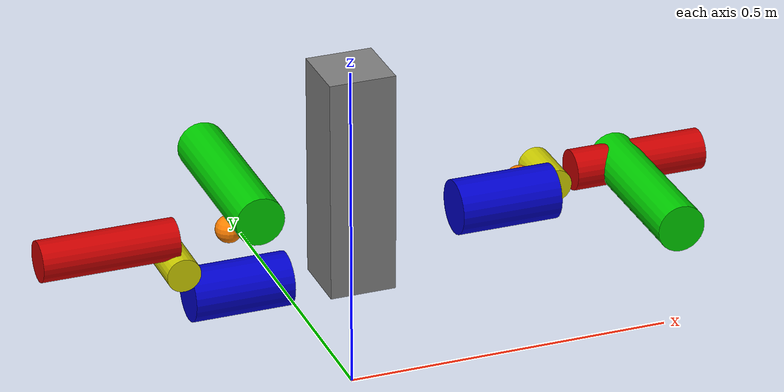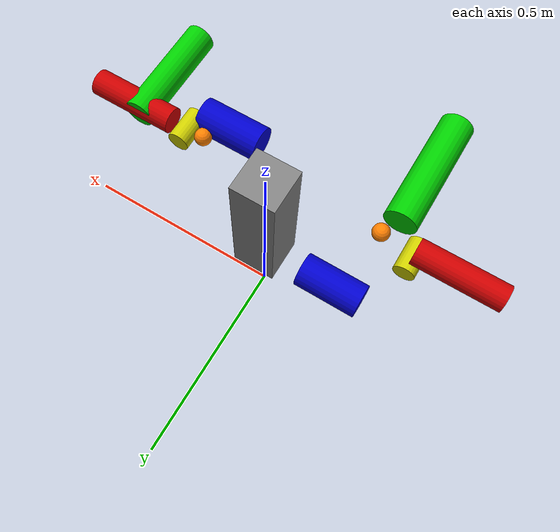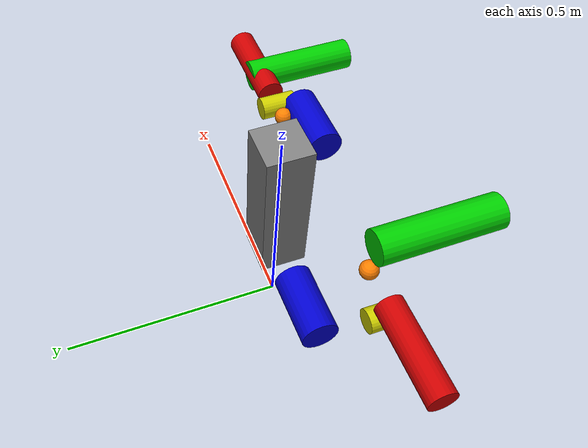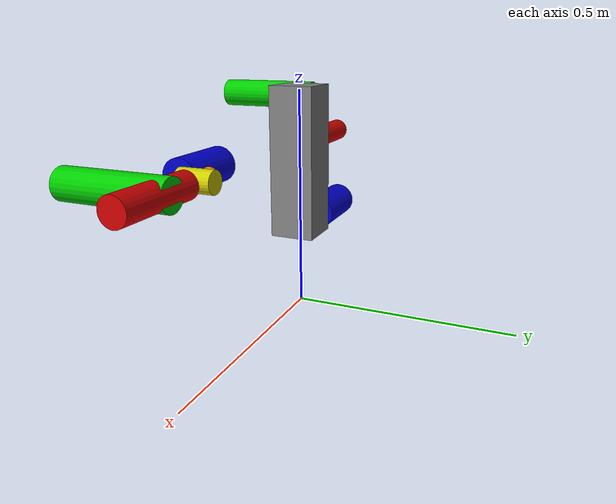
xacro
<?xml version="1.0"?>
<robot xmlns:xacro="http://www.ros.org/wiki/xacro" name="smilei_dual_arm">

  <!-- Load parameters from YAML file -->
  <!-- The actual values will be passed from the launch file as arguments -->

  <!-- Define constants -->
  <xacro:property name="PI" value="3.14159265359"/>
  <xacro:property name="PI_2" value="${PI/2}"/>
  <xacro:property name="PI_4" value="${PI/4}"/>

  <!-- Declare arguments with default values -->
  <!-- Neck dimensions -->
  <xacro:arg name="neck_height" default="0.34"/>
  <xacro:property name="neck_height" value="$(arg neck_height)"/>

  <!-- Arm dimensions -->
  <xacro:arg name="base_height" default="0.34"/>
  <xacro:property name="base_height" value="$(arg base_height)"/>

  <xacro:arg name="link0_length" default="0.10"/>
  <xacro:property name="link0_length" value="$(arg link0_length)"/>

  <xacro:arg name="link0_width" default="0.0"/>
  <xacro:property name="link0_width" value="$(arg link0_width)"/>

  <xacro:arg name="link1_length" default="0.15"/>
  <xacro:property name="link1_length" value="$(arg link1_length)"/>

  <xacro:arg name="link1_width" default="-0.30"/>
  <xacro:property name="link1_width" value="$(arg link1_width)"/>

  <xacro:arg name="link2_length" default="0.25"/>
  <xacro:property name="link2_length" value="$(arg link2_length)"/>

  <xacro:arg name="link2_width" default="0.20"/>
  <xacro:property name="link2_width" value="$(arg link2_width)"/>

  <xacro:arg name="link3_length" default="-0.2"/>
  <xacro:property name="link3_length" value="$(arg link3_length)"/>

  <xacro:arg name="link4_length" default="-0.08"/>
  <xacro:property name="link4_length" value="$(arg link4_length)"/>

  <xacro:arg name="ee_offset" default="0.0"/>
  <xacro:property name="ee_offset" value="$(arg ee_offset)"/>

  <!-- Joint limits - Right Arm -->
  <xacro:arg name="right_joint0_lower" default="-0.78539816339"/>
  <xacro:property name="right_joint0_lower" value="$(arg right_joint0_lower)"/>

  <xacro:arg name="right_joint0_upper" default="1.57079632679"/>
  <xacro:property name="right_joint0_upper" value="$(arg right_joint0_upper)"/>

  <xacro:arg name="right_joint1_lower" default="-0.78539816339"/>
  <xacro:property name="right_joint1_lower" value="$(arg right_joint1_lower)"/>

  <xacro:arg name="right_joint1_upper" default="1.57079632679"/>
  <xacro:property name="right_joint1_upper" value="$(arg right_joint1_upper)"/>

  <xacro:arg name="right_joint2_lower" default="-2.35619449019"/>
  <xacro:property name="right_joint2_lower" value="$(arg right_joint2_lower)"/>

  <xacro:arg name="right_joint2_upper" default="0.78539816339"/>
  <xacro:property name="right_joint2_upper" value="$(arg right_joint2_upper)"/>

  <xacro:arg name="right_joint3_lower" default="-1.57079632679"/>
  <xacro:property name="right_joint3_lower" value="$(arg right_joint3_lower)"/>

  <xacro:arg name="right_joint3_upper" default="0"/>
  <xacro:property name="right_joint3_upper" value="$(arg right_joint3_upper)"/>

  <!-- Joint limits - Left Arm -->
  <xacro:arg name="left_joint0_lower" default="-0.78539816339"/>
  <xacro:property name="left_joint0_lower" value="$(arg left_joint0_lower)"/>

  <xacro:arg name="left_joint0_upper" default="1.57079632679"/>
  <xacro:property name="left_joint0_upper" value="$(arg left_joint0_upper)"/>

  <xacro:arg name="left_joint1_lower" default="-0.78539816339"/>
  <xacro:property name="left_joint1_lower" value="$(arg left_joint1_lower)"/>

  <xacro:arg name="left_joint1_upper" default="1.57079632679"/>
  <xacro:property name="left_joint1_upper" value="$(arg left_joint1_upper)"/>

  <xacro:arg name="left_joint2_lower" default="-2.35619449019"/>
  <xacro:property name="left_joint2_lower" value="$(arg left_joint2_lower)"/>

  <xacro:arg name="left_joint2_upper" default="0.78539816339"/>
  <xacro:property name="left_joint2_upper" value="$(arg left_joint2_upper)"/>

  <xacro:arg name="left_joint3_lower" default="-1.57079632679"/>
  <xacro:property name="left_joint3_lower" value="$(arg left_joint3_lower)"/>

  <xacro:arg name="left_joint3_upper" default="0"/>
  <xacro:property name="left_joint3_upper" value="$(arg left_joint3_upper)"/>

  <!-- Joint dynamics -->
  <xacro:arg name="joint0_effort" default="100.0"/>
  <xacro:property name="joint0_effort" value="$(arg joint0_effort)"/>

  <xacro:arg name="joint0_velocity" default="1.0"/>
  <xacro:property name="joint0_velocity" value="$(arg joint0_velocity)"/>

  <xacro:arg name="joint1_effort" default="100.0"/>
  <xacro:property name="joint1_effort" value="$(arg joint1_effort)"/>

  <xacro:arg name="joint1_velocity" default="1.0"/>
  <xacro:property name="joint1_velocity" value="$(arg joint1_velocity)"/>

  <xacro:arg name="joint2_effort" default="80.0"/>
  <xacro:property name="joint2_effort" value="$(arg joint2_effort)"/>

  <xacro:arg name="joint2_velocity" default="1.0"/>
  <xacro:property name="joint2_velocity" value="$(arg joint2_velocity)"/>

  <xacro:arg name="joint3_effort" default="50.0"/>
  <xacro:property name="joint3_effort" value="$(arg joint3_effort)"/>

  <xacro:arg name="joint3_velocity" default="2.0"/>
  <xacro:property name="joint3_velocity" value="$(arg joint3_velocity)"/>

  <!-- Base Link -->
  <link name="base_link" />

  <!-- Neck Base Joint - Fixed -->
  <joint name="neck_base_joint" type="fixed">
    <parent link="base_link"/>
    <child link="neck_base"/>
    <origin xyz="0 0 ${neck_height}" rpy="0 0 0"/>
  </joint>

  <!-- Base Link (Neck Base) - Fixed reference frame -->
  <link name="neck_base">
    <visual>
      <geometry>
        <box size="0.1 0.1 ${base_height}"/>
      </geometry>
      <origin xyz="0 0 0" rpy="0 0 0"/>
      <material name="gray">
        <color rgba="0.5 0.5 0.5 1.0"/>
      </material>
    </visual>
    <inertial>
      <mass value="0.5"/>
      <inertia ixx="0.001" ixy="0.0" ixz="0.0" iyy="0.001" iyz="0.0" izz="0.001"/>
    </inertial>
  </link>

  <!-- RIGHT ARM (positive X direction) -->

  <!-- Joint 0 Right - Shoulder Pan -->
  <joint name="right_joint_0" type="revolute">
    <parent link="neck_base"/>
    <child link="right_link_1"/>
    <origin xyz="${link0_length} 0 0" rpy="${PI_2} 0 ${PI_2}"/>
    <axis xyz="0 0 1"/>
    <limit lower="${right_joint0_lower}" upper="${right_joint0_upper}" effort="${joint0_effort}" velocity="${joint0_velocity}"/>
  </joint>

  <link name="right_link_1">
    <visual>
      <geometry>
        <cylinder radius="0.04" length="${link1_length}"/>
      </geometry>
      <origin xyz="${link1_width/2} 0 ${link1_length/2}" rpy="0 0 0"/>
      <material name="blue">
        <color rgba="0.0 0.0 0.8 1.0"/>
      </material>
    </visual>
    <inertial>
      <mass value="0.3"/>
      <origin xyz="${link1_width/2} 0 ${link1_length/2}" rpy="0 0 0"/>
      <inertia ixx="0.001" ixy="0.0" ixz="0.0" iyy="0.001" iyz="0.0" izz="0.0005"/>
    </inertial>
  </link>

  <!-- Joint 1 Right - Shoulder Lift -->
  <joint name="right_joint_1" type="revolute">
    <parent link="right_link_1"/>
    <child link="right_link_2"/>
    <origin xyz="${link1_width} 0 ${link1_length}" rpy="${PI_2} 0 ${PI_2}"/>
    <axis xyz="0 0 1"/>
    <limit lower="${right_joint1_lower}" upper="${right_joint1_upper}" effort="${joint1_effort}" velocity="${joint1_velocity}"/>
  </joint>

  <link name="right_link_2">
    <visual>
      <geometry>
        <cylinder radius="0.035" length="${link2_length}"/>
      </geometry>
      <origin xyz="0 ${link2_length/2} ${link2_width/2}" rpy="0 0 0"/>
      <material name="green">
        <color rgba="0.0 0.8 0.0 1.0"/>
      </material>
    </visual>
    <inertial>
      <mass value="0.25"/>
      <origin xyz="0 ${link2_length/2} ${link2_width/2}" rpy="0 0 0"/>
      <inertia ixx="0.0008" ixy="0.0" ixz="0.0" iyy="0.0008" iyz="0.0" izz="0.0004"/>
    </inertial>
  </link>

  <!-- Joint 2 Right - Elbow -->
  <joint name="right_joint_2" type="revolute">
    <parent link="right_link_2"/>
    <child link="right_link_3"/>
    <origin xyz="0 ${link2_length} ${link2_width}" rpy="${-PI_2} ${-PI_2} 0"/>
    <axis xyz="0 0 1"/>
    <limit lower="${right_joint2_lower}" upper="${right_joint2_upper}" effort="${joint2_effort}" velocity="${joint2_velocity}"/>
  </joint>

  <link name="right_link_3">
    <visual>
      <geometry>
        <cylinder radius="0.03" length="${-link3_length}"/>
      </geometry>
      <origin xyz="0 0 ${link3_length/2}" rpy="0 0 0"/>
      <material name="red">
        <color rgba="0.8 0.0 0.0 1.0"/>
      </material>
    </visual>
    <inertial>
      <mass value="0.2"/>
      <origin xyz="0 0 ${link3_length/2}" rpy="0 0 0"/>
      <inertia ixx="0.0005" ixy="0.0" ixz="0.0" iyy="0.0005" iyz="0.0" izz="0.0003"/>
    </inertial>
  </link>

  <!-- Joint 3 Right - Wrist -->
  <joint name="right_joint_3" type="revolute">
    <parent link="right_link_3"/>
    <child link="right_link_4"/>
    <origin xyz="0 0 ${link3_length}" rpy="${PI_2} 0 ${PI_2}"/>
    <axis xyz="0 0 1"/>
    <limit lower="${right_joint3_lower}" upper="${right_joint3_upper}" effort="${joint3_effort}" velocity="${joint3_velocity}"/>
  </joint>

  <link name="right_link_4">
    <visual>
      <geometry>
        <cylinder radius="0.025" length="${-link4_length}"/>
      </geometry>
      <origin xyz="0 ${link4_length/2} 0" rpy="0 0 0"/>
      <material name="yellow">
        <color rgba="0.8 0.8 0.0 1.0"/>
      </material>
    </visual>
    <inertial>
      <mass value="0.15"/>
      <origin xyz="0 ${link4_length/2} 0" rpy="0 0 0"/>
      <inertia ixx="0.0003" ixy="0.0" ixz="0.0" iyy="0.0003" iyz="0.0" izz="0.0002"/>
    </inertial>
  </link>

  <!-- End Effector Right -->
  <joint name="right_ee_joint" type="fixed">
    <parent link="right_link_4"/>
    <child link="right_end_effector"/>
    <origin xyz="0 ${link4_length + ee_offset} 0" rpy="${PI_2} 0 ${PI_2}"/>
  </joint>

  <link name="right_end_effector">
    <visual>
      <geometry>
        <sphere radius="0.02"/>
      </geometry>
      <origin xyz="0 0 0" rpy="0 0 0"/>
      <material name="orange">
        <color rgba="1.0 0.5 0.0 1.0"/>
      </material>
    </visual>
    <inertial>
      <mass value="0.05"/>
      <inertia ixx="0.0001" ixy="0.0" ixz="0.0" iyy="0.0001" iyz="0.0" izz="0.0001"/>
    </inertial>
  </link>

  <!-- LEFT ARM (negative X direction - mirrored) -->

  <!-- Joint 0 Left - Shoulder Pan (mirrored) -->
  <joint name="left_joint_0" type="revolute">
    <parent link="neck_base"/>
    <child link="left_link_1"/>
    <origin xyz="${-link0_length} 0 0" rpy="${PI_2} ${-PI_2} ${-PI_2}"/>
    <axis xyz="0 0 1"/>
    <limit lower="${left_joint0_lower}" upper="${left_joint0_upper}" effort="${joint0_effort}" velocity="${joint0_velocity}"/>
  </joint>

  <link name="left_link_1">
    <visual>
      <geometry>
        <cylinder radius="0.04" length="${link1_length}"/>
      </geometry>
      <origin xyz="${link1_width/2} 0 ${link1_length/2}" rpy="0 0 0"/>
      <material name="blue">
        <color rgba="0.0 0.0 0.8 1.0"/>
      </material>
    </visual>
    <inertial>
      <mass value="0.3"/>
      <origin xyz="${link1_width/2} 0 ${link1_length/2}" rpy="0 0 0"/>
      <inertia ixx="0.001" ixy="0.0" ixz="0.0" iyy="0.001" iyz="0.0" izz="0.0005"/>
    </inertial>
  </link>

  <!-- Joint 1 Left - Shoulder Lift -->
  <joint name="left_joint_1" type="revolute">
    <parent link="left_link_1"/>
    <child link="left_link_2"/>
    <origin xyz="0 ${link1_width} ${link1_length}" rpy="${-PI_2} ${-PI_2} 0"/>
    <axis xyz="0 0 1"/>
    <limit lower="${left_joint1_lower}" upper="${left_joint1_upper}" effort="${joint1_effort}" velocity="${joint1_velocity}"/>
  </joint>

  <link name="left_link_2">
    <visual>
      <geometry>
        <cylinder radius="0.035" length="${link2_length}"/>
      </geometry>
      <origin xyz="0 ${link2_length/2} ${link2_width/2}" rpy="0 0 0"/>
      <material name="green">
        <color rgba="0.0 0.8 0.0 1.0"/>
      </material>
    </visual>
    <inertial>
      <mass value="0.25"/>
      <origin xyz="0 ${link2_length/2} ${link2_width/2}" rpy="0 0 0"/>
      <inertia ixx="0.0008" ixy="0.0" ixz="0.0" iyy="0.0008" iyz="0.0" izz="0.0004"/>
    </inertial>
  </link>

  <!-- Joint 2 Left - Elbow -->
  <joint name="left_joint_2" type="revolute">
    <parent link="left_link_2"/>
    <child link="left_link_3"/>
    <origin xyz="${link2_length} 0 ${link2_width}" rpy="${PI_2} 0 ${PI_2}"/>
    <axis xyz="0 0 1"/>
    <limit lower="${left_joint2_lower}" upper="${left_joint2_upper}" effort="${joint2_effort}" velocity="${joint2_velocity}"/>
  </joint>

  <link name="left_link_3">
    <visual>
      <geometry>
        <cylinder radius="0.03" length="${-link3_length}"/>
      </geometry>
      <origin xyz="0 0 ${link3_length/2}" rpy="0 0 0"/>
      <material name="red">
        <color rgba="0.8 0.0 0.0 1.0"/>
      </material>
    </visual>
    <inertial>
      <mass value="0.2"/>
      <origin xyz="0 0 ${link3_length/2}" rpy="0 0 0"/>
      <inertia ixx="0.0005" ixy="0.0" ixz="0.0" iyy="0.0005" iyz="0.0" izz="0.0003"/>
    </inertial>
  </link>

  <!-- Joint 3 Left - Wrist -->
  <joint name="left_joint_3" type="revolute">
    <parent link="left_link_3"/>
    <child link="left_link_4"/>
    <origin xyz="0 0 ${link3_length}" rpy="${-PI_2} ${-PI_2} 0"/>
    <axis xyz="0 0 1"/>
    <limit lower="${left_joint3_lower}" upper="${left_joint3_upper}" effort="${joint3_effort}" velocity="${joint3_velocity}"/>
  </joint>

  <link name="left_link_4">
    <visual>
      <geometry>
        <cylinder radius="0.025" length="${-link4_length}"/>
      </geometry>
      <origin xyz="0 ${link4_length/2} 0" rpy="0 0 0"/>
      <material name="yellow">
        <color rgba="0.8 0.8 0.0 1.0"/>
      </material>
    </visual>
    <inertial>
      <mass value="0.15"/>
      <origin xyz="0 ${link4_length/2} 0" rpy="0 0 0"/>
      <inertia ixx="0.0003" ixy="0.0" ixz="0.0" iyy="0.0003" iyz="0.0" izz="0.0002"/>
    </inertial>
  </link>

  <!-- End Effector Left -->
  <joint name="left_ee_joint" type="fixed">
    <parent link="left_link_4"/>
    <child link="left_end_effector"/>
    <origin xyz="${link4_length + ee_offset} 0 0" rpy="0 ${-PI_2} ${-PI_2}"/>
  </joint>

  <link name="left_end_effector">
    <visual>
      <geometry>
        <sphere radius="0.02"/>
      </geometry>
      <origin xyz="0 0 0" rpy="0 0 0"/>
      <material name="orange">
        <color rgba="1.0 0.5 0.0 1.0"/>
      </material>
    </visual>
    <inertial>
      <mass value="0.05"/>
      <inertia ixx="0.0001" ixy="0.0" ixz="0.0" iyy="0.0001" iyz="0.0" izz="0.0001"/>
    </inertial>
  </link>

</robot>
